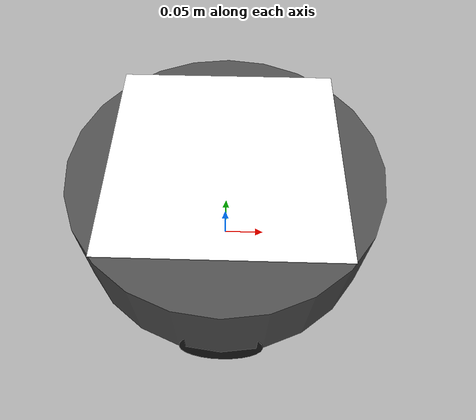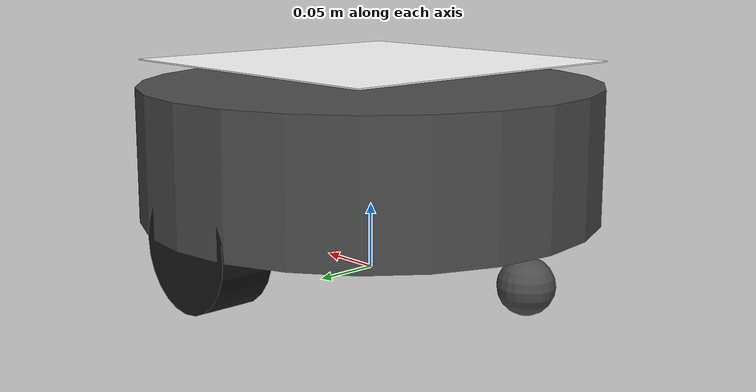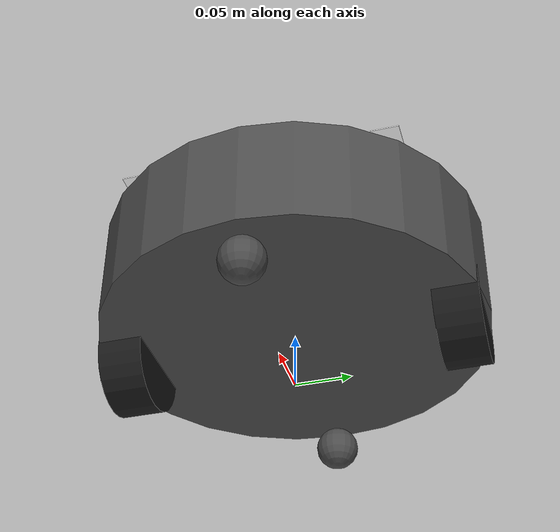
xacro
<?xml version="1.0"?>
<robot name="amr_robot" xmlns:xacro="http://www.ros.org/wiki/xacro">

  <!-- ========================= PROPERTIES ========================= -->
  <xacro:property name="robot_name" value="amr_robot"/>
  <xacro:property name="base_radius" value="0.175"/>
  <xacro:property name="base_height" value="0.10"/>
  <xacro:property name="wheel_radius" value="0.045"/>
  <xacro:property name="wheel_thickness" value="0.04"/>
  <xacro:property name="wheel_separation" value="0.30"/>
  <xacro:property name="caster_radius" value="0.02"/>
  <xacro:property name="robot_mass" value="5.0"/>
  <xacro:property name="wheel_mass" value="0.3"/>

  <!-- ========================= MATERIALS ========================= -->
  <material name="black">
    <color rgba="0.1 0.1 0.1 1.0"/>
  </material>
  <material name="dark_grey">
    <color rgba="0.3 0.3 0.3 1.0"/>
  </material>
  <material name="white">
    <color rgba="1.0 1.0 1.0 1.0"/>
  </material>
  <material name="orange">
    <color rgba="1.0 0.5 0.0 1.0"/>
  </material>
  <material name="blue">
    <color rgba="0.0 0.3 0.8 1.0"/>
  </material>

  <!-- ========================= BASE LINK ========================= -->
  <link name="base_footprint"/>

  <joint name="base_footprint_joint" type="fixed">
    <parent link="base_footprint"/>
    <child link="base_link"/>
    <origin xyz="0 0 ${wheel_radius}" rpy="0 0 0"/>
  </joint>

  <link name="base_link">
    <visual>
      <origin xyz="0 0 ${base_height/2}" rpy="0 0 0"/>
      <geometry>
        <cylinder radius="${base_radius}" length="${base_height}"/>
      </geometry>
      <material name="dark_grey"/>
    </visual>
    <collision>
      <origin xyz="0 0 ${base_height/2}" rpy="0 0 0"/>
      <geometry>
        <cylinder radius="${base_radius}" length="${base_height}"/>
      </geometry>
    </collision>
    <inertial>
      <mass value="${robot_mass}"/>
      <origin xyz="0 0 ${base_height/2}" rpy="0 0 0"/>
      <inertia
        ixx="${robot_mass*(3*base_radius*base_radius + base_height*base_height)/12}"
        ixy="0" ixz="0"
        iyy="${robot_mass*(3*base_radius*base_radius + base_height*base_height)/12}"
        iyz="0"
        izz="${robot_mass*base_radius*base_radius/2}"/>
    </inertial>
  </link>

  <!-- ========================= LEFT WHEEL ========================= -->
  <joint name="left_wheel_joint" type="continuous">
    <parent link="base_link"/>
    <child link="left_wheel"/>
    <origin xyz="0 ${wheel_separation/2} 0" rpy="${-pi/2} 0 0"/>
    <axis xyz="0 0 1"/>
    <dynamics damping="0.1" friction="0.1"/>
  </joint>

  <link name="left_wheel">
    <visual>
      <origin xyz="0 0 0" rpy="0 0 0"/>
      <geometry>
        <cylinder radius="${wheel_radius}" length="${wheel_thickness}"/>
      </geometry>
      <material name="black"/>
    </visual>
    <collision>
      <origin xyz="0 0 0" rpy="0 0 0"/>
      <geometry>
        <cylinder radius="${wheel_radius}" length="${wheel_thickness}"/>
      </geometry>
    </collision>
    <inertial>
      <mass value="${wheel_mass}"/>
      <origin xyz="0 0 0" rpy="0 0 0"/>
      <inertia
        ixx="${wheel_mass*(3*wheel_radius*wheel_radius + wheel_thickness*wheel_thickness)/12}"
        ixy="0" ixz="0"
        iyy="${wheel_mass*(3*wheel_radius*wheel_radius + wheel_thickness*wheel_thickness)/12}"
        iyz="0"
        izz="${wheel_mass*wheel_radius*wheel_radius/2}"/>
    </inertial>
  </link>

  <!-- ========================= RIGHT WHEEL ========================= -->
  <joint name="right_wheel_joint" type="continuous">
    <parent link="base_link"/>
    <child link="right_wheel"/>
    <origin xyz="0 ${-wheel_separation/2} 0" rpy="${-pi/2} 0 0"/>
    <axis xyz="0 0 1"/>
    <dynamics damping="0.1" friction="0.1"/>
  </joint>

  <link name="right_wheel">
    <visual>
      <origin xyz="0 0 0" rpy="0 0 0"/>
      <geometry>
        <cylinder radius="${wheel_radius}" length="${wheel_thickness}"/>
      </geometry>
      <material name="black"/>
    </visual>
    <collision>
      <origin xyz="0 0 0" rpy="0 0 0"/>
      <geometry>
        <cylinder radius="${wheel_radius}" length="${wheel_thickness}"/>
      </geometry>
    </collision>
    <inertial>
      <mass value="${wheel_mass}"/>
      <origin xyz="0 0 0" rpy="0 0 0"/>
      <inertia
        ixx="${wheel_mass*(3*wheel_radius*wheel_radius + wheel_thickness*wheel_thickness)/12}"
        ixy="0" ixz="0"
        iyy="${wheel_mass*(3*wheel_radius*wheel_radius + wheel_thickness*wheel_thickness)/12}"
        iyz="0"
        izz="${wheel_mass*wheel_radius*wheel_radius/2}"/>
    </inertial>
  </link>

  <!-- ========================= FRONT CASTER ========================= -->
  <joint name="front_caster_joint" type="fixed">
    <parent link="base_link"/>
    <child link="front_caster"/>
    <origin xyz="${base_radius - caster_radius} 0 0" rpy="0 0 0"/>
  </joint>

  <link name="front_caster">
    <visual>
      <origin xyz="0 0 ${-wheel_radius + caster_radius}" rpy="0 0 0"/>
      <geometry>
        <sphere radius="${caster_radius}"/>
      </geometry>
      <material name="dark_grey"/>
    </visual>
    <collision>
      <origin xyz="0 0 ${-wheel_radius + caster_radius}" rpy="0 0 0"/>
      <geometry>
        <sphere radius="${caster_radius}"/>
      </geometry>
    </collision>
    <inertial>
      <mass value="0.05"/>
      <inertia ixx="0.0001" ixy="0" ixz="0" iyy="0.0001" iyz="0" izz="0.0001"/>
    </inertial>
  </link>

  <!-- ========================= REAR CASTER ========================= -->
  <joint name="rear_caster_joint" type="fixed">
    <parent link="base_link"/>
    <child link="rear_caster"/>
    <origin xyz="${-(base_radius - caster_radius)} 0 0" rpy="0 0 0"/>
  </joint>

  <link name="rear_caster">
    <visual>
      <origin xyz="0 0 ${-wheel_radius + caster_radius}" rpy="0 0 0"/>
      <geometry>
        <sphere radius="${caster_radius}"/>
      </geometry>
      <material name="dark_grey"/>
    </visual>
    <collision>
      <origin xyz="0 0 ${-wheel_radius + caster_radius}" rpy="0 0 0"/>
      <geometry>
        <sphere radius="${caster_radius}"/>
      </geometry>
    </collision>
    <inertial>
      <mass value="0.05"/>
      <inertia ixx="0.0001" ixy="0" ixz="0" iyy="0.0001" iyz="0" izz="0.0001"/>
    </inertial>
  </link>

  <!-- ========================= APRILTAG PLATFORM ========================= -->
  <joint name="tag_platform_joint" type="fixed">
    <parent link="base_link"/>
    <child link="tag_platform"/>
    <origin xyz="0 0 ${base_height + 0.005}" rpy="0 0 0"/>
  </joint>

  <link name="tag_platform">
    <visual>
      <origin xyz="0 0 0.005" rpy="0 0 0"/>
      <geometry>
        <box size="0.12 0.12 0.01"/>
      </geometry>
      <material name="white"/>
    </visual>
    <collision>
      <origin xyz="0 0 0.005" rpy="0 0 0"/>
      <geometry>
        <box size="0.12 0.12 0.01"/>
      </geometry>
    </collision>
    <inertial>
      <mass value="0.02"/>
      <inertia ixx="0.0001" ixy="0" ixz="0" iyy="0.0001" iyz="0" izz="0.0001"/>
    </inertial>
  </link>

  <!-- ========================= APRILTAG (Visual Marker) ========================= -->
  <joint name="apriltag_joint" type="fixed">
    <parent link="tag_platform"/>
    <child link="apriltag_link"/>
    <origin xyz="0 0 0.011" rpy="0 0 0"/>
  </joint>

  <link name="apriltag_link">
    <visual>
      <origin xyz="0 0 0" rpy="0 0 0"/>
      <geometry>
        <box size="0.25 0.25 0.001"/>
      </geometry>
      <material name="white"/>
    </visual>
    <collision>
      <origin xyz="0 0 0" rpy="0 0 0"/>
      <geometry>
        <box size="0.25 0.25 0.001"/>
      </geometry>
    </collision>
    <inertial>
      <mass value="0.001"/>
      <inertia ixx="0.00001" ixy="0" ixz="0" iyy="0.00001" iyz="0" izz="0.00001"/>
    </inertial>
  </link>

  <!-- ========================= GAZEBO PLUGINS ========================= -->
  <gazebo>
    <plugin name="differential_drive_controller" filename="libgazebo_ros_diff_drive.so">
      <ros>
        <namespace>/</namespace>
        <remapping>cmd_vel:=cmd_vel</remapping>
        <remapping>odom:=odom_raw</remapping>
      </ros>
      <left_joint>left_wheel_joint</left_joint>
      <right_joint>right_wheel_joint</right_joint>
      <wheel_separation>${wheel_separation}</wheel_separation>
      <wheel_diameter>${2*wheel_radius}</wheel_diameter>
      <max_wheel_torque>10.0</max_wheel_torque>
      <max_wheel_acceleration>2.0</max_wheel_acceleration>
      <publish_odom>false</publish_odom>
      <publish_odom_tf>false</publish_odom_tf>
      <publish_wheel_tf>false</publish_wheel_tf>
      <update_rate>50</update_rate>
    </plugin>
  </gazebo>

  <!-- Gazebo material for base -->
  <gazebo reference="base_link">
    <material>Gazebo/DarkGrey</material>
    <mu1>0.2</mu1>
    <mu2>0.2</mu2>
  </gazebo>

  <gazebo reference="left_wheel">
    <material>Gazebo/Black</material>
    <mu1>0.9</mu1>
    <mu2>0.9</mu2>
  </gazebo>

  <gazebo reference="right_wheel">
    <material>Gazebo/Black</material>
    <mu1>0.9</mu1>
    <mu2>0.9</mu2>
  </gazebo>

  <gazebo reference="front_caster">
    <material>Gazebo/DarkGrey</material>
    <mu1>0.0</mu1>
    <mu2>0.0</mu2>
  </gazebo>

  <gazebo reference="rear_caster">
    <material>Gazebo/DarkGrey</material>
    <mu1>0.0</mu1>
    <mu2>0.0</mu2>
  </gazebo>
  <gazebo reference="apriltag_link">
  <visual>
    <material>
      <script>
        <uri>file:///home/sugant/sim_ws/install/robot_description/share/robot_description/materials/scripts/apriltag.material</uri>
        <name>AprilTag/ID0</name>
      </script>
    </material>
  </visual>
</gazebo>
</robot>
